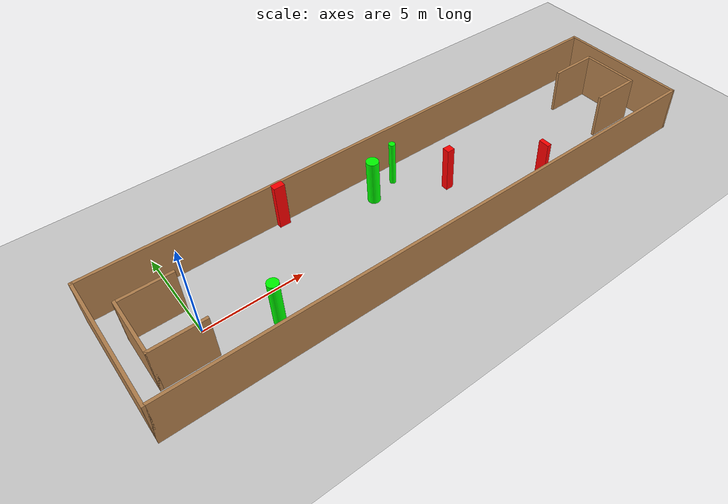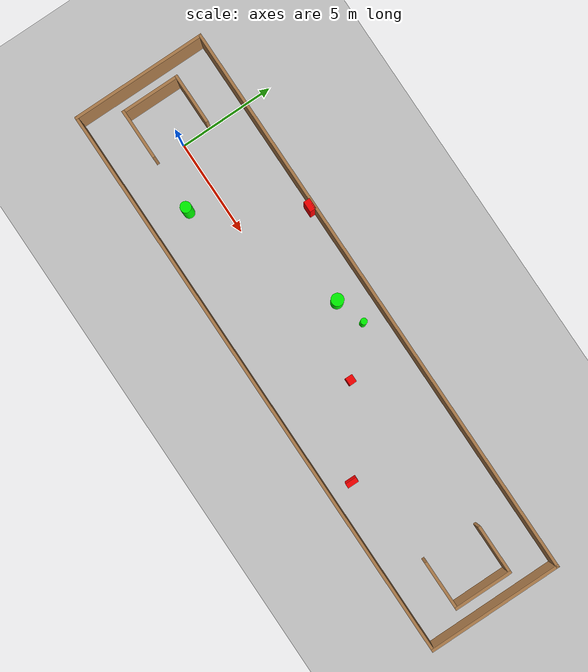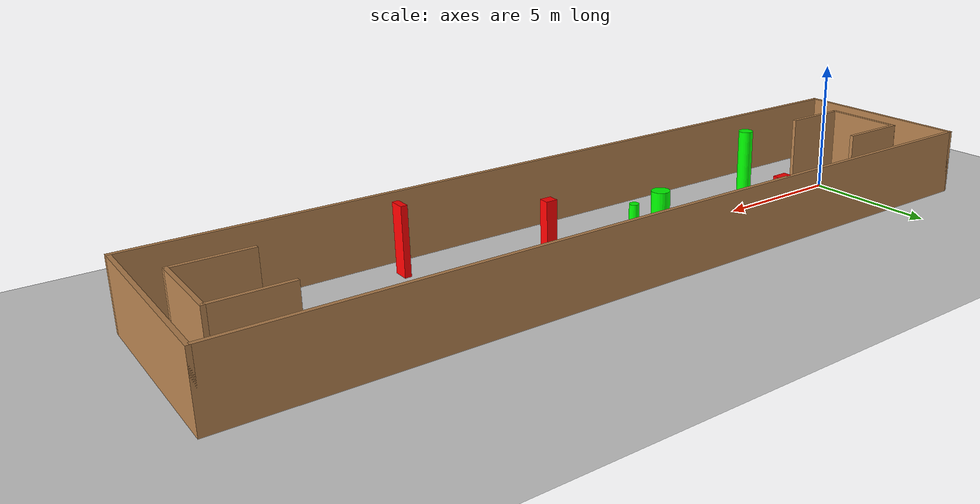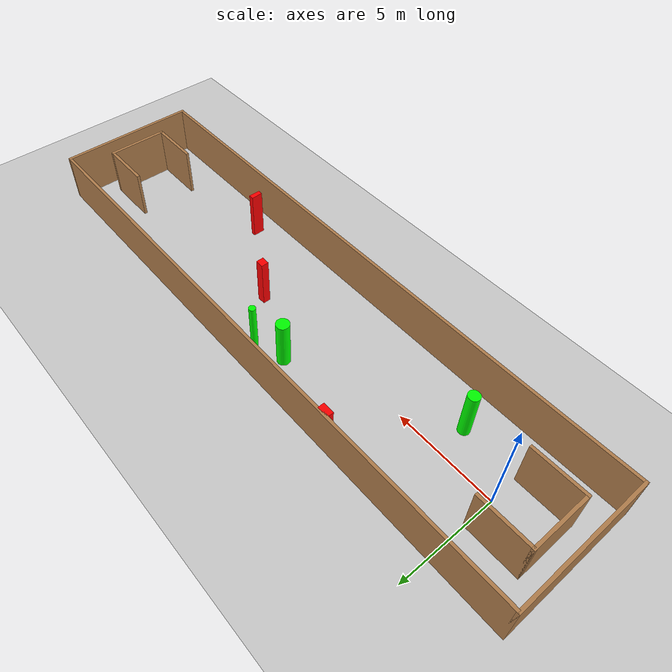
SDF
<sdf version="1.7">
 <world name="default">
  <light name="sun" type="directional">
   <pose>0 0 10 0 -0 0</pose>
   <diffuse>0.8 0.8 0.8 1</diffuse>
   <specular>0.2 0.2 0.2 1</specular>
   <attenuation>
    <range>1000</range>
    <constant>0.9</constant>
    <linear>0.01</linear>
    <quadratic>0.001</quadratic>
   </attenuation>
   <direction>-0.5 0.1 -0.9</direction>
   <spot><inner_angle>0</inner_angle><outer_angle>0</outer_angle><falloff>0</falloff></spot>
  </light>
  <model name="ground_plane">
   <static>1</static>
   <link name="link">
    <collision name="collision">
     <geometry><plane><normal>0 0 1</normal><size>100 100</size></plane></geometry>
     <surface>
      <contact><collide_bitmask>65535</collide_bitmask></contact>
      <friction><ode><mu>100</mu><mu2>50</mu2></ode></friction>
     </surface>
    </collision>
    <visual name="visual">
     <cast_shadows>0</cast_shadows>
     <geometry><plane><normal>0 0 1</normal><size>100 100</size></plane></geometry>
     <material>
      <script><uri>file://media/materials/scripts/gazebo.material</uri><name>Gazebo/Grey</name></script>
     </material>
    </visual>
   </link>
  </model>
  <gravity>0 0 -9.8</gravity>
  <magnetic_field>6e-06 2.3e-05 -4.2e-05</magnetic_field>
  <atmosphere type="adiabatic"/>
  <physics type="ode">
   <max_step_size>0.001</max_step_size>
   <real_time_factor>1</real_time_factor>
   <real_time_update_rate>1000</real_time_update_rate>
  </physics>
  <scene><ambient>0.4 0.4 0.4 1</ambient><background>0.7 0.7 0.7 1</background><shadows>1</shadows></scene>
  <spherical_coordinates>
   <surface_model>EARTH_WGS84</surface_model>
   <latitude_deg>0</latitude_deg>
   <longitude_deg>0</longitude_deg>
   <elevation>0</elevation>
   <heading_deg>0</heading_deg>
  </spherical_coordinates>
  <model name="my_base_walls">
   <link name="Wall_0">
    <collision name="Wall_0_Collision">
     <geometry><box><size>7.15 0.15 2.5</size></box></geometry>
     <pose>0 0 1.25 0 -0 0</pose>
    </collision>
    <visual name="Wall_0_Visual">
     <pose>0 0 1.25 0 -0 0</pose>
     <geometry><box><size>7.15 0.15 2.5</size></box></geometry>
     <material>
      <script><uri>file://media/materials/scripts/gazebo.material</uri><name>Gazebo/Wood</name></script>
      <ambient>1 1 1 1</ambient>
     </material>
     <meta><layer>0</layer></meta>
    </visual>
    <pose>-15 0 0 0 -0 1.5708</pose>
   </link>
   <link name="Wall_10">
    <collision name="Wall_10_Collision">
     <geometry><box><size>2.65 0.15 2.5</size></box></geometry>
     <pose>0 0 1.25 0 -0 0</pose>
    </collision>
    <visual name="Wall_10_Visual">
     <pose>0 0 1.25 0 -0 0</pose>
     <geometry><box><size>2.65 0.15 2.5</size></box></geometry>
     <material>
      <script><uri>file://media/materials/scripts/gazebo.material</uri><name>Gazebo/Wood</name></script>
      <ambient>1 1 1 1</ambient>
     </material>
     <meta><layer>0</layer></meta>
    </visual>
    <pose>-12.75 -1.5 0 0 -0 0</pose>
   </link>
   <link name="Wall_12">
    <collision name="Wall_12_Collision">
     <geometry><box><size>2.65 0.15 2.5</size></box></geometry>
     <pose>0 0 1.25 0 -0 0</pose>
    </collision>
    <visual name="Wall_12_Visual">
     <pose>0 0 1.25 0 -0 0</pose>
     <geometry><box><size>2.65 0.15 2.5</size></box></geometry>
     <material>
      <script><uri>file://media/materials/scripts/gazebo.material</uri><name>Gazebo/Wood</name></script>
      <ambient>1 1 1 1</ambient>
     </material>
     <meta><layer>0</layer></meta>
    </visual>
    <pose>-12.75 1.5 0 0 -0 0</pose>
   </link>
   <link name="Wall_14">
    <collision name="Wall_14_Collision">
     <geometry><box><size>3.15 0.15 2.5</size></box></geometry>
     <pose>0 0 1.25 0 -0 0</pose>
    </collision>
    <visual name="Wall_14_Visual">
     <pose>0 0 1.25 0 -0 0</pose>
     <geometry><box><size>3.15 0.15 2.5</size></box></geometry>
     <material>
      <script><uri>file://media/materials/scripts/gazebo.material</uri><name>Gazebo/Wood</name></script>
      <ambient>1 1 1 1</ambient>
     </material>
     <meta><layer>0</layer></meta>
    </visual>
    <pose>14 0 0 0 -0 -1.5708</pose>
   </link>
   <link name="Wall_15">
    <collision name="Wall_15_Collision">
     <geometry><box><size>2.65 0.15 2.5</size></box></geometry>
     <pose>0 0 1.25 0 -0 0</pose>
    </collision>
    <visual name="Wall_15_Visual">
     <pose>0 0 1.25 0 -0 0</pose>
     <geometry><box><size>2.65 0.15 2.5</size></box></geometry>
     <material>
      <script><uri>file://media/materials/scripts/gazebo.material</uri><name>Gazebo/Wood</name></script>
      <ambient>1 1 1 1</ambient>
     </material>
     <meta><layer>0</layer></meta>
    </visual>
    <pose>12.75 -1.5 0 0 -0 3.14159</pose>
   </link>
   <link name="Wall_17">
    <collision name="Wall_17_Collision">
     <geometry><box><size>2.65 0.15 2.5</size></box></geometry>
     <pose>0 0 1.25 0 -0 0</pose>
    </collision>
    <visual name="Wall_17_Visual">
     <pose>0 0 1.25 0 -0 0</pose>
     <geometry><box><size>2.65 0.15 2.5</size></box></geometry>
     <material>
      <script><uri>file://media/materials/scripts/gazebo.material</uri><name>Gazebo/Wood</name></script>
      <ambient>1 1 1 1</ambient>
     </material>
     <meta><layer>0</layer></meta>
    </visual>
    <pose>12.75 1.5 0 0 -0 3.14159</pose>
   </link>
   <link name="Wall_2">
    <collision name="Wall_2_Collision">
     <geometry><box><size>30.15 0.15 2.5</size></box></geometry>
     <pose>0 0 1.25 0 -0 0</pose>
    </collision>
    <visual name="Wall_2_Visual">
     <pose>0 0 1.25 0 -0 0</pose>
     <geometry><box><size>30.15 0.15 2.5</size></box></geometry>
     <material>
      <script><uri>file://media/materials/scripts/gazebo.material</uri><name>Gazebo/Wood</name></script>
      <ambient>1 1 1 1</ambient>
     </material>
     <meta><layer>0</layer></meta>
    </visual>
    <pose>-0 -3.5 0 0 -0 0</pose>
   </link>
   <link name="Wall_4">
    <collision name="Wall_4_Collision">
     <geometry><box><size>30.15 0.15 2.5</size></box></geometry>
     <pose>0 0 1.25 0 -0 0</pose>
    </collision>
    <visual name="Wall_4_Visual">
     <pose>0 0 1.25 0 -0 0</pose>
     <geometry><box><size>30.15 0.15 2.5</size></box></geometry>
     <material>
      <script><uri>file://media/materials/scripts/gazebo.material</uri><name>Gazebo/Wood</name></script>
      <ambient>1 1 1 1</ambient>
     </material>
     <meta><layer>0</layer></meta>
    </visual>
    <pose>-0 3.5 0 0 -0 0</pose>
   </link>
   <link name="Wall_6">
    <collision name="Wall_6_Collision">
     <geometry><box><size>7.15 0.15 2.5</size></box></geometry>
     <pose>0 0 1.25 0 -0 0</pose>
    </collision>
    <visual name="Wall_6_Visual">
     <pose>0 0 1.25 0 -0 0</pose>
     <geometry><box><size>7.15 0.15 2.5</size></box></geometry>
     <material>
      <script><uri>file://media/materials/scripts/gazebo.material</uri><name>Gazebo/Wood</name></script>
      <ambient>1 1 1 1</ambient>
     </material>
     <meta><layer>0</layer></meta>
    </visual>
    <pose>15 0 0 0 -0 -1.5708</pose>
   </link>
   <link name="Wall_9">
    <collision name="Wall_9_Collision">
     <geometry><box><size>3.15 0.15 2.5</size></box></geometry>
     <pose>0 0 1.25 0 -0 0</pose>
    </collision>
    <visual name="Wall_9_Visual">
     <pose>0 0 1.25 0 -0 0</pose>
     <geometry><box><size>3.15 0.15 2.5</size></box></geometry>
     <material>
      <script><uri>file://media/materials/scripts/gazebo.material</uri><name>Gazebo/Wood</name></script>
      <ambient>1 1 1 1</ambient>
     </material>
     <meta><layer>0</layer></meta>
    </visual>
    <pose>-14 0 0 0 -0 -1.5708</pose>
   </link>
   <static>1</static>
   <pose>11.5 0 0 0 -0 0</pose>
  </model>
  <model name="cylinder1">
   <static>1</static>
   <link name="link">
    <inertial>
     <mass>1</mass>
     <inertia><ixx>0.5</ixx><ixy>0</ixy><ixz>0</ixz><iyy>0.5</iyy><iyz>0</iyz><izz>1</izz></inertia>
    </inertial>
    <collision name="collision">
     <geometry><cylinder><radius>0.32118166168795426</radius><length>2.5</length></cylinder></geometry>
    </collision>
    <visual name="visual">
     <geometry><cylinder><radius>0.32118166168795426</radius><length>2.5</length></cylinder></geometry>
     <material>
      <ambient>0 1 0 1</ambient>
      <diffuse>0 1 0 1</diffuse>
      <specular>0.1 0.1 0.1 1</specular>
      <emissive>0 0 0 0</emissive>
     </material>
    </visual>
   </link>
   <pose>10.443628717921566 1.923113628383474 1.25 0 0 0</pose>
  </model>
  <model name="cylinder2">
   <static>1</static>
   <link name="link">
    <inertial>
     <mass>1</mass>
     <inertia><ixx>0.5</ixx><ixy>0</ixy><ixz>0</ixz><iyy>0.5</iyy><iyz>0</iyz><izz>1</izz></inertia>
    </inertial>
    <collision name="collision">
     <geometry><cylinder><radius>0.16735531723686015</radius><length>2.5</length></cylinder></geometry>
    </collision>
    <visual name="visual">
     <geometry><cylinder><radius>0.16735531723686015</radius><length>2.5</length></cylinder></geometry>
     <material>
      <ambient>0 1 0 1</ambient>
      <diffuse>0 1 0 1</diffuse>
      <specular>0.1 0.1 0.1 1</specular>
      <emissive>0 0 0 0</emissive>
     </material>
    </visual>
   </link>
   <pose>11.981156222168467 2.3859659220341065 1.25 0 0 0</pose>
  </model>
  <model name="cylinder3">
   <static>1</static>
   <link name="link">
    <inertial>
     <mass>1</mass>
     <inertia><ixx>0.5</ixx><ixy>0</ixy><ixz>0</ixz><iyy>0.5</iyy><iyz>0</iyz><izz>1</izz></inertia>
    </inertial>
    <collision name="collision">
     <geometry><cylinder><radius>0.28103683918239997</radius><length>2.5</length></cylinder></geometry>
    </collision>
    <visual name="visual">
     <geometry><cylinder><radius>0.28103683918239997</radius><length>2.5</length></cylinder></geometry>
     <material>
      <ambient>0 1 0 1</ambient>
      <diffuse>0 1 0 1</diffuse>
      <specular>0.1 0.1 0.1 1</specular>
      <emissive>0 0 0 0</emissive>
     </material>
    </visual>
   </link>
   <pose>2.8585176438125597 -1.5716564917277274 1.25 0 0 0</pose>
  </model>
  <model name="box1">
   <static>1</static>
   <link name="link">
    <inertial>
     <mass>1</mass>
     <inertia><ixx>0.083</ixx><ixy>0</ixy><ixz>0</ixz><iyy>0.083</iyy><iyz>0</iyz><izz>0.083</izz></inertia>
    </inertial>
    <collision name="collision">
     <geometry><box><size>0.5679401884674229 0.33171182155442636 2.5</size></box></geometry>
    </collision>
    <visual name="visual">
     <geometry><box><size>0.5679401884674229 0.33171182155442636 2.5</size></box></geometry>
     <material>
      <ambient>1 0 0 1</ambient>
      <diffuse>1 0 0 1</diffuse>
      <specular>0.1 0.1 0.1 1</specular>
      <emissive>0 0 0 0</emissive>
     </material>
    </visual>
    <sensor name="my_contact" type="contact">
     <contact><collision>box_collision</collision><topic>__default_topic__</topic></contact>
    </sensor>
   </link>
   <pose>6.03504462558136 3.319975563450633 1.25 0 0 0</pose>
  </model>
  <model name="box2">
   <static>1</static>
   <link name="link">
    <inertial>
     <mass>1</mass>
     <inertia><ixx>0.083</ixx><ixy>0</ixy><ixz>0</ixz><iyy>0.083</iyy><iyz>0</iyz><izz>0.083</izz></inertia>
    </inertial>
    <collision name="collision">
     <geometry><box><size>0.24094617393930062 0.5845908854718079 2.5</size></box></geometry>
    </collision>
    <visual name="visual">
     <geometry><box><size>0.24094617393930062 0.5845908854718079 2.5</size></box></geometry>
     <material>
      <ambient>1 0 0 1</ambient>
      <diffuse>1 0 0 1</diffuse>
      <specular>0.1 0.1 0.1 1</specular>
      <emissive>0 0 0 0</emissive>
     </material>
    </visual>
    <sensor name="my_contact" type="contact">
     <contact><collision>box_collision</collision><topic>__default_topic__</topic></contact>
    </sensor>
   </link>
   <pose>17.934383104915227 -2.2837554828635676 1.25 0 0 0</pose>
  </model>
  <model name="box3">
   <static>1</static>
   <link name="link">
    <inertial>
     <mass>1</mass>
     <inertia><ixx>0.083</ixx><ixy>0</ixy><ixz>0</ixz><iyy>0.083</iyy><iyz>0</iyz><izz>0.083</izz></inertia>
    </inertial>
    <collision name="collision">
     <geometry><box><size>0.41045267646675665 0.37587050604837624 2.5</size></box></geometry>
    </collision>
    <visual name="visual">
     <geometry><box><size>0.41045267646675665 0.37587050604837624 2.5</size></box></geometry>
     <material>
      <ambient>1 0 0 1</ambient>
      <diffuse>1 0 0 1</diffuse>
      <specular>0.1 0.1 0.1 1</specular>
      <emissive>0 0 0 0</emissive>
     </material>
    </visual>
    <sensor name="my_contact" type="contact">
     <contact><collision>box_collision</collision><topic>__default_topic__</topic></contact>
    </sensor>
   </link>
   <pose>13.922438679925037 0.34921388927718233 1.25 0 0 0</pose>
  </model>
 </world>
</sdf>
